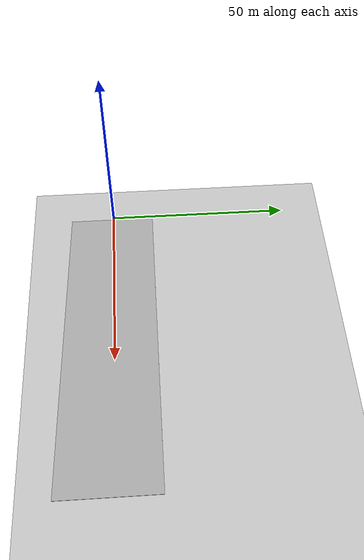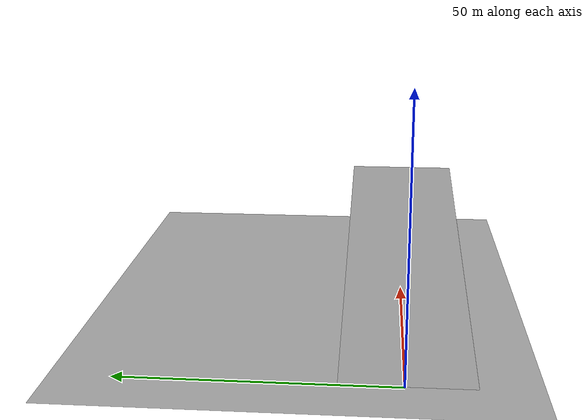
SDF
<sdf version="1.7">
 <world name="default">
  <scene>
   <sky><clouds><speed>0</speed></clouds></sky>
   <ambient>0.4 0.4 0.4 1</ambient>
   <background>0.7 0.7 0.7 1</background>
   <shadows>1</shadows>
  </scene>
  <light name="sun" type="directional">
   <pose>0 0 10 0 -0 0</pose>
   <diffuse>0.8 0.8 0.8 1</diffuse>
   <specular>0.2 0.2 0.2 1</specular>
   <attenuation>
    <range>1000</range>
    <constant>0.9</constant>
    <linear>0.01</linear>
    <quadratic>0.001</quadratic>
   </attenuation>
   <direction>-0.5 0.1 -0.9</direction>
   <spot><inner_angle>0</inner_angle><outer_angle>0</outer_angle><falloff>0</falloff></spot>
  </light>
  <model name="ground_plane">
   <static>1</static>
   <link name="link">
    <collision name="collision">
     <geometry><plane><normal>0 0 1</normal><size>100 100</size></plane></geometry>
     <surface>
      <contact><collide_bitmask>65535</collide_bitmask></contact>
      <friction><ode><mu>100</mu><mu2>50</mu2></ode></friction>
     </surface>
    </collision>
    <visual name="visual">
     <cast_shadows>0</cast_shadows>
     <geometry><plane><normal>0 0 1</normal><size>100 100</size></plane></geometry>
     <material>
      <script><uri>file://media/materials/scripts/gazebo.material</uri><name>Gazebo/Grey</name></script>
     </material>
    </visual>
   </link>
  </model>
  <model name="box">
   <static>1</static>
   <pose>47.4936 -0.503781 7.93198 0 -0.170006 0</pose>
   <link name="link">
    <collision name="collision"><geometry><box><size>96.0215 23.6809 0.1</size></box></geometry></collision>
    <visual name="visual"><geometry><box><size>96.0215 23.6809 0.1</size></box></geometry></visual>
   </link>
  </model>
  <gravity>0 0 -9.8</gravity>
  <magnetic_field>6e-06 2.3e-05 -4.2e-05</magnetic_field>
  <atmosphere type="adiabatic"/>
  <physics type="ode">
   <max_step_size>0.001</max_step_size>
   <real_time_factor>1</real_time_factor>
   <real_time_update_rate>1000</real_time_update_rate>
  </physics>
  <spherical_coordinates>
   <surface_model>EARTH_WGS84</surface_model>
   <latitude_deg>0</latitude_deg>
   <longitude_deg>0</longitude_deg>
   <elevation>0</elevation>
   <heading_deg>0</heading_deg>
  </spherical_coordinates>
 </world>
</sdf>
